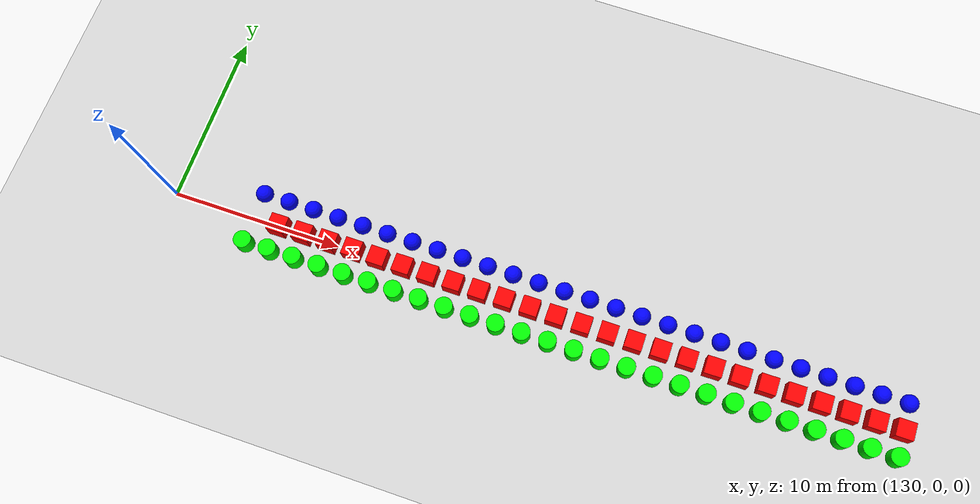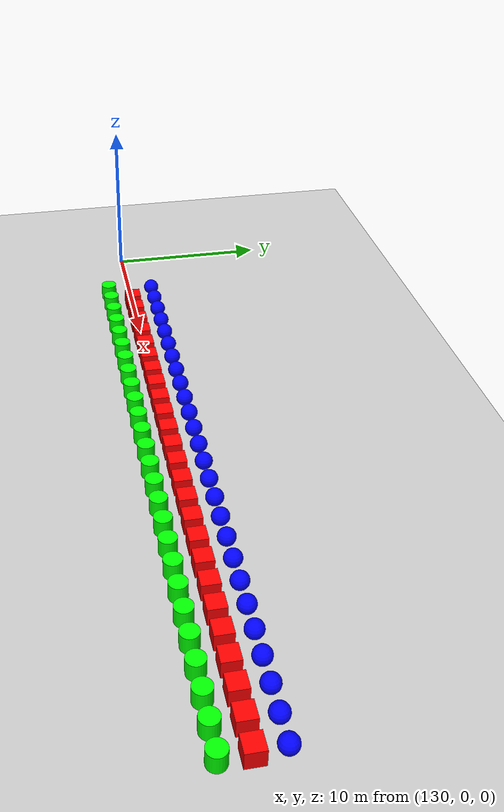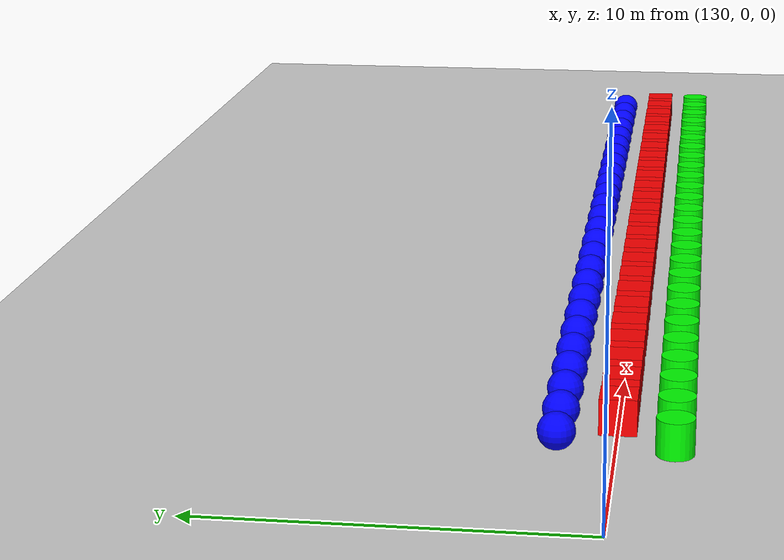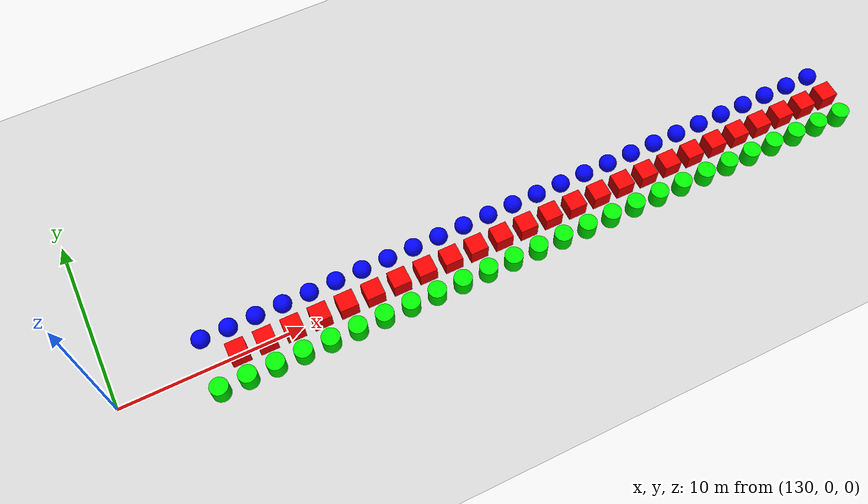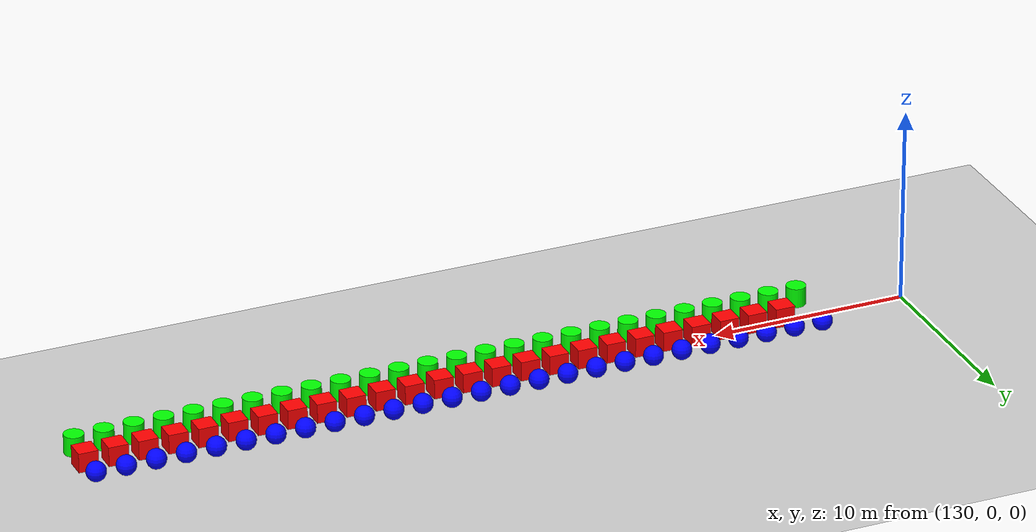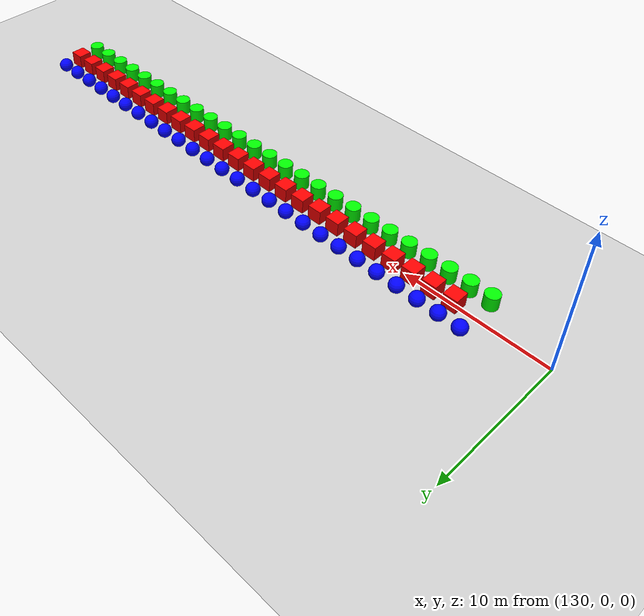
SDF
<sdf version="1.6">
 <world name="shapes">
  <model name="ground_plane">
   <static>true</static>
   <link name="link">
    <collision name="collision">
     <geometry><plane><normal>0 0 1</normal><size>100 100</size></plane></geometry>
    </collision>
    <visual name="visual">
     <geometry><plane><normal>0 0 1</normal><size>100 100</size></plane></geometry>
     <material>
      <ambient>0.8 0.8 0.8 1</ambient>
      <diffuse>0.8 0.8 0.8 1</diffuse>
      <specular>0.8 0.8 0.8 1</specular>
     </material>
    </visual>
   </link>
  </model>
  <model name="cylinder_590">
   <static>false</static>
   <pose>135.0 -1.5 0.5 0 0 0</pose>
   <link name="cylinder_link">
    <inertial>
     <inertia><ixx>2</ixx><ixy>0</ixy><ixz>0</ixz><iyy>2</iyy><iyz>0</iyz><izz>2</izz></inertia>
     <mass>2.0</mass>
    </inertial>
    <collision name="cylinder_collision">
     <geometry><cylinder><radius>0.5</radius><length>1.0</length></cylinder></geometry>
    </collision>
    <visual name="cylinder_visual">
     <geometry><cylinder><radius>0.5</radius><length>1.0</length></cylinder></geometry>
     <material><ambient>0 1 0 1</ambient><diffuse>0 1 0 1</diffuse><specular>0 1 0 1</specular></material>
    </visual>
   </link>
  </model>
  <model name="sphere_590">
   <static>false</static>
   <pose>135.0 1.5 0.5 0 0 0</pose>
   <link name="sphere_link">
    <inertial>
     <inertia><ixx>3</ixx><ixy>0</ixy><ixz>0</ixz><iyy>3</iyy><iyz>0</iyz><izz>3</izz></inertia>
     <mass>3.0</mass>
    </inertial>
    <collision name="sphere_collision"><geometry><sphere><radius>0.5</radius></sphere></geometry></collision>
    <visual name="sphere_visual">
     <geometry><sphere><radius>0.5</radius></sphere></geometry>
     <material><ambient>0 0 1 1</ambient><diffuse>0 0 1 1</diffuse><specular>0 0 1 1</specular></material>
    </visual>
   </link>
  </model>
  <model name="box_591">
   <static>false</static>
   <pose>136.5 0 0.5 0 0 0</pose>
   <link name="box_link">
    <inertial>
     <inertia><ixx>1</ixx><ixy>0</ixy><ixz>0</ixz><iyy>1</iyy><iyz>0</iyz><izz>1</izz></inertia>
     <mass>1.0</mass>
    </inertial>
    <collision name="box_collision"><geometry><box><size>1 1 1</size></box></geometry></collision>
    <visual name="box_visual">
     <geometry><box><size>1 1 1</size></box></geometry>
     <material><ambient>1 0 0 1</ambient><diffuse>1 0 0 1</diffuse><specular>1 0 0 1</specular></material>
    </visual>
   </link>
  </model>
  <model name="cylinder_591">
   <static>false</static>
   <pose>136.5 -1.5 0.5 0 0 0</pose>
   <link name="cylinder_link">
    <inertial>
     <inertia><ixx>2</ixx><ixy>0</ixy><ixz>0</ixz><iyy>2</iyy><iyz>0</iyz><izz>2</izz></inertia>
     <mass>2.0</mass>
    </inertial>
    <collision name="cylinder_collision">
     <geometry><cylinder><radius>0.5</radius><length>1.0</length></cylinder></geometry>
    </collision>
    <visual name="cylinder_visual">
     <geometry><cylinder><radius>0.5</radius><length>1.0</length></cylinder></geometry>
     <material><ambient>0 1 0 1</ambient><diffuse>0 1 0 1</diffuse><specular>0 1 0 1</specular></material>
    </visual>
   </link>
  </model>
  <model name="sphere_591">
   <static>false</static>
   <pose>136.5 1.5 0.5 0 0 0</pose>
   <link name="sphere_link">
    <inertial>
     <inertia><ixx>3</ixx><ixy>0</ixy><ixz>0</ixz><iyy>3</iyy><iyz>0</iyz><izz>3</izz></inertia>
     <mass>3.0</mass>
    </inertial>
    <collision name="sphere_collision"><geometry><sphere><radius>0.5</radius></sphere></geometry></collision>
    <visual name="sphere_visual">
     <geometry><sphere><radius>0.5</radius></sphere></geometry>
     <material><ambient>0 0 1 1</ambient><diffuse>0 0 1 1</diffuse><specular>0 0 1 1</specular></material>
    </visual>
   </link>
  </model>
  <model name="box_592">
   <static>false</static>
   <pose>138.0 0 0.5 0 0 0</pose>
   <link name="box_link">
    <inertial>
     <inertia><ixx>1</ixx><ixy>0</ixy><ixz>0</ixz><iyy>1</iyy><iyz>0</iyz><izz>1</izz></inertia>
     <mass>1.0</mass>
    </inertial>
    <collision name="box_collision"><geometry><box><size>1 1 1</size></box></geometry></collision>
    <visual name="box_visual">
     <geometry><box><size>1 1 1</size></box></geometry>
     <material><ambient>1 0 0 1</ambient><diffuse>1 0 0 1</diffuse><specular>1 0 0 1</specular></material>
    </visual>
   </link>
  </model>
  <model name="cylinder_592">
   <static>false</static>
   <pose>138.0 -1.5 0.5 0 0 0</pose>
   <link name="cylinder_link">
    <inertial>
     <inertia><ixx>2</ixx><ixy>0</ixy><ixz>0</ixz><iyy>2</iyy><iyz>0</iyz><izz>2</izz></inertia>
     <mass>2.0</mass>
    </inertial>
    <collision name="cylinder_collision">
     <geometry><cylinder><radius>0.5</radius><length>1.0</length></cylinder></geometry>
    </collision>
    <visual name="cylinder_visual">
     <geometry><cylinder><radius>0.5</radius><length>1.0</length></cylinder></geometry>
     <material><ambient>0 1 0 1</ambient><diffuse>0 1 0 1</diffuse><specular>0 1 0 1</specular></material>
    </visual>
   </link>
  </model>
  <model name="sphere_592">
   <static>false</static>
   <pose>138.0 1.5 0.5 0 0 0</pose>
   <link name="sphere_link">
    <inertial>
     <inertia><ixx>3</ixx><ixy>0</ixy><ixz>0</ixz><iyy>3</iyy><iyz>0</iyz><izz>3</izz></inertia>
     <mass>3.0</mass>
    </inertial>
    <collision name="sphere_collision"><geometry><sphere><radius>0.5</radius></sphere></geometry></collision>
    <visual name="sphere_visual">
     <geometry><sphere><radius>0.5</radius></sphere></geometry>
     <material><ambient>0 0 1 1</ambient><diffuse>0 0 1 1</diffuse><specular>0 0 1 1</specular></material>
    </visual>
   </link>
  </model>
  <model name="box_593">
   <static>false</static>
   <pose>139.5 0 0.5 0 0 0</pose>
   <link name="box_link">
    <inertial>
     <inertia><ixx>1</ixx><ixy>0</ixy><ixz>0</ixz><iyy>1</iyy><iyz>0</iyz><izz>1</izz></inertia>
     <mass>1.0</mass>
    </inertial>
    <collision name="box_collision"><geometry><box><size>1 1 1</size></box></geometry></collision>
    <visual name="box_visual">
     <geometry><box><size>1 1 1</size></box></geometry>
     <material><ambient>1 0 0 1</ambient><diffuse>1 0 0 1</diffuse><specular>1 0 0 1</specular></material>
    </visual>
   </link>
  </model>
  <model name="cylinder_593">
   <static>false</static>
   <pose>139.5 -1.5 0.5 0 0 0</pose>
   <link name="cylinder_link">
    <inertial>
     <inertia><ixx>2</ixx><ixy>0</ixy><ixz>0</ixz><iyy>2</iyy><iyz>0</iyz><izz>2</izz></inertia>
     <mass>2.0</mass>
    </inertial>
    <collision name="cylinder_collision">
     <geometry><cylinder><radius>0.5</radius><length>1.0</length></cylinder></geometry>
    </collision>
    <visual name="cylinder_visual">
     <geometry><cylinder><radius>0.5</radius><length>1.0</length></cylinder></geometry>
     <material><ambient>0 1 0 1</ambient><diffuse>0 1 0 1</diffuse><specular>0 1 0 1</specular></material>
    </visual>
   </link>
  </model>
  <model name="sphere_593">
   <static>false</static>
   <pose>139.5 1.5 0.5 0 0 0</pose>
   <link name="sphere_link">
    <inertial>
     <inertia><ixx>3</ixx><ixy>0</ixy><ixz>0</ixz><iyy>3</iyy><iyz>0</iyz><izz>3</izz></inertia>
     <mass>3.0</mass>
    </inertial>
    <collision name="sphere_collision"><geometry><sphere><radius>0.5</radius></sphere></geometry></collision>
    <visual name="sphere_visual">
     <geometry><sphere><radius>0.5</radius></sphere></geometry>
     <material><ambient>0 0 1 1</ambient><diffuse>0 0 1 1</diffuse><specular>0 0 1 1</specular></material>
    </visual>
   </link>
  </model>
  <model name="box_594">
   <static>false</static>
   <pose>141.0 0 0.5 0 0 0</pose>
   <link name="box_link">
    <inertial>
     <inertia><ixx>1</ixx><ixy>0</ixy><ixz>0</ixz><iyy>1</iyy><iyz>0</iyz><izz>1</izz></inertia>
     <mass>1.0</mass>
    </inertial>
    <collision name="box_collision"><geometry><box><size>1 1 1</size></box></geometry></collision>
    <visual name="box_visual">
     <geometry><box><size>1 1 1</size></box></geometry>
     <material><ambient>1 0 0 1</ambient><diffuse>1 0 0 1</diffuse><specular>1 0 0 1</specular></material>
    </visual>
   </link>
  </model>
  <model name="cylinder_594">
   <static>false</static>
   <pose>141.0 -1.5 0.5 0 0 0</pose>
   <link name="cylinder_link">
    <inertial>
     <inertia><ixx>2</ixx><ixy>0</ixy><ixz>0</ixz><iyy>2</iyy><iyz>0</iyz><izz>2</izz></inertia>
     <mass>2.0</mass>
    </inertial>
    <collision name="cylinder_collision">
     <geometry><cylinder><radius>0.5</radius><length>1.0</length></cylinder></geometry>
    </collision>
    <visual name="cylinder_visual">
     <geometry><cylinder><radius>0.5</radius><length>1.0</length></cylinder></geometry>
     <material><ambient>0 1 0 1</ambient><diffuse>0 1 0 1</diffuse><specular>0 1 0 1</specular></material>
    </visual>
   </link>
  </model>
  <model name="sphere_594">
   <static>false</static>
   <pose>141.0 1.5 0.5 0 0 0</pose>
   <link name="sphere_link">
    <inertial>
     <inertia><ixx>3</ixx><ixy>0</ixy><ixz>0</ixz><iyy>3</iyy><iyz>0</iyz><izz>3</izz></inertia>
     <mass>3.0</mass>
    </inertial>
    <collision name="sphere_collision"><geometry><sphere><radius>0.5</radius></sphere></geometry></collision>
    <visual name="sphere_visual">
     <geometry><sphere><radius>0.5</radius></sphere></geometry>
     <material><ambient>0 0 1 1</ambient><diffuse>0 0 1 1</diffuse><specular>0 0 1 1</specular></material>
    </visual>
   </link>
  </model>
  <model name="box_595">
   <static>false</static>
   <pose>142.5 0 0.5 0 0 0</pose>
   <link name="box_link">
    <inertial>
     <inertia><ixx>1</ixx><ixy>0</ixy><ixz>0</ixz><iyy>1</iyy><iyz>0</iyz><izz>1</izz></inertia>
     <mass>1.0</mass>
    </inertial>
    <collision name="box_collision"><geometry><box><size>1 1 1</size></box></geometry></collision>
    <visual name="box_visual">
     <geometry><box><size>1 1 1</size></box></geometry>
     <material><ambient>1 0 0 1</ambient><diffuse>1 0 0 1</diffuse><specular>1 0 0 1</specular></material>
    </visual>
   </link>
  </model>
  <model name="cylinder_595">
   <static>false</static>
   <pose>142.5 -1.5 0.5 0 0 0</pose>
   <link name="cylinder_link">
    <inertial>
     <inertia><ixx>2</ixx><ixy>0</ixy><ixz>0</ixz><iyy>2</iyy><iyz>0</iyz><izz>2</izz></inertia>
     <mass>2.0</mass>
    </inertial>
    <collision name="cylinder_collision">
     <geometry><cylinder><radius>0.5</radius><length>1.0</length></cylinder></geometry>
    </collision>
    <visual name="cylinder_visual">
     <geometry><cylinder><radius>0.5</radius><length>1.0</length></cylinder></geometry>
     <material><ambient>0 1 0 1</ambient><diffuse>0 1 0 1</diffuse><specular>0 1 0 1</specular></material>
    </visual>
   </link>
  </model>
  <model name="sphere_595">
   <static>false</static>
   <pose>142.5 1.5 0.5 0 0 0</pose>
   <link name="sphere_link">
    <inertial>
     <inertia><ixx>3</ixx><ixy>0</ixy><ixz>0</ixz><iyy>3</iyy><iyz>0</iyz><izz>3</izz></inertia>
     <mass>3.0</mass>
    </inertial>
    <collision name="sphere_collision"><geometry><sphere><radius>0.5</radius></sphere></geometry></collision>
    <visual name="sphere_visual">
     <geometry><sphere><radius>0.5</radius></sphere></geometry>
     <material><ambient>0 0 1 1</ambient><diffuse>0 0 1 1</diffuse><specular>0 0 1 1</specular></material>
    </visual>
   </link>
  </model>
  <model name="box_596">
   <static>false</static>
   <pose>144.0 0 0.5 0 0 0</pose>
   <link name="box_link">
    <inertial>
     <inertia><ixx>1</ixx><ixy>0</ixy><ixz>0</ixz><iyy>1</iyy><iyz>0</iyz><izz>1</izz></inertia>
     <mass>1.0</mass>
    </inertial>
    <collision name="box_collision"><geometry><box><size>1 1 1</size></box></geometry></collision>
    <visual name="box_visual">
     <geometry><box><size>1 1 1</size></box></geometry>
     <material><ambient>1 0 0 1</ambient><diffuse>1 0 0 1</diffuse><specular>1 0 0 1</specular></material>
    </visual>
   </link>
  </model>
  <model name="cylinder_596">
   <static>false</static>
   <pose>144.0 -1.5 0.5 0 0 0</pose>
   <link name="cylinder_link">
    <inertial>
     <inertia><ixx>2</ixx><ixy>0</ixy><ixz>0</ixz><iyy>2</iyy><iyz>0</iyz><izz>2</izz></inertia>
     <mass>2.0</mass>
    </inertial>
    <collision name="cylinder_collision">
     <geometry><cylinder><radius>0.5</radius><length>1.0</length></cylinder></geometry>
    </collision>
    <visual name="cylinder_visual">
     <geometry><cylinder><radius>0.5</radius><length>1.0</length></cylinder></geometry>
     <material><ambient>0 1 0 1</ambient><diffuse>0 1 0 1</diffuse><specular>0 1 0 1</specular></material>
    </visual>
   </link>
  </model>
  <model name="sphere_596">
   <static>false</static>
   <pose>144.0 1.5 0.5 0 0 0</pose>
   <link name="sphere_link">
    <inertial>
     <inertia><ixx>3</ixx><ixy>0</ixy><ixz>0</ixz><iyy>3</iyy><iyz>0</iyz><izz>3</izz></inertia>
     <mass>3.0</mass>
    </inertial>
    <collision name="sphere_collision"><geometry><sphere><radius>0.5</radius></sphere></geometry></collision>
    <visual name="sphere_visual">
     <geometry><sphere><radius>0.5</radius></sphere></geometry>
     <material><ambient>0 0 1 1</ambient><diffuse>0 0 1 1</diffuse><specular>0 0 1 1</specular></material>
    </visual>
   </link>
  </model>
  <model name="box_597">
   <static>false</static>
   <pose>145.5 0 0.5 0 0 0</pose>
   <link name="box_link">
    <inertial>
     <inertia><ixx>1</ixx><ixy>0</ixy><ixz>0</ixz><iyy>1</iyy><iyz>0</iyz><izz>1</izz></inertia>
     <mass>1.0</mass>
    </inertial>
    <collision name="box_collision"><geometry><box><size>1 1 1</size></box></geometry></collision>
    <visual name="box_visual">
     <geometry><box><size>1 1 1</size></box></geometry>
     <material><ambient>1 0 0 1</ambient><diffuse>1 0 0 1</diffuse><specular>1 0 0 1</specular></material>
    </visual>
   </link>
  </model>
  <model name="cylinder_597">
   <static>false</static>
   <pose>145.5 -1.5 0.5 0 0 0</pose>
   <link name="cylinder_link">
    <inertial>
     <inertia><ixx>2</ixx><ixy>0</ixy><ixz>0</ixz><iyy>2</iyy><iyz>0</iyz><izz>2</izz></inertia>
     <mass>2.0</mass>
    </inertial>
    <collision name="cylinder_collision">
     <geometry><cylinder><radius>0.5</radius><length>1.0</length></cylinder></geometry>
    </collision>
    <visual name="cylinder_visual">
     <geometry><cylinder><radius>0.5</radius><length>1.0</length></cylinder></geometry>
     <material><ambient>0 1 0 1</ambient><diffuse>0 1 0 1</diffuse><specular>0 1 0 1</specular></material>
    </visual>
   </link>
  </model>
  <model name="sphere_597">
   <static>false</static>
   <pose>145.5 1.5 0.5 0 0 0</pose>
   <link name="sphere_link">
    <inertial>
     <inertia><ixx>3</ixx><ixy>0</ixy><ixz>0</ixz><iyy>3</iyy><iyz>0</iyz><izz>3</izz></inertia>
     <mass>3.0</mass>
    </inertial>
    <collision name="sphere_collision"><geometry><sphere><radius>0.5</radius></sphere></geometry></collision>
    <visual name="sphere_visual">
     <geometry><sphere><radius>0.5</radius></sphere></geometry>
     <material><ambient>0 0 1 1</ambient><diffuse>0 0 1 1</diffuse><specular>0 0 1 1</specular></material>
    </visual>
   </link>
  </model>
  <model name="box_598">
   <static>false</static>
   <pose>147.0 0 0.5 0 0 0</pose>
   <link name="box_link">
    <inertial>
     <inertia><ixx>1</ixx><ixy>0</ixy><ixz>0</ixz><iyy>1</iyy><iyz>0</iyz><izz>1</izz></inertia>
     <mass>1.0</mass>
    </inertial>
    <collision name="box_collision"><geometry><box><size>1 1 1</size></box></geometry></collision>
    <visual name="box_visual">
     <geometry><box><size>1 1 1</size></box></geometry>
     <material><ambient>1 0 0 1</ambient><diffuse>1 0 0 1</diffuse><specular>1 0 0 1</specular></material>
    </visual>
   </link>
  </model>
  <model name="cylinder_598">
   <static>false</static>
   <pose>147.0 -1.5 0.5 0 0 0</pose>
   <link name="cylinder_link">
    <inertial>
     <inertia><ixx>2</ixx><ixy>0</ixy><ixz>0</ixz><iyy>2</iyy><iyz>0</iyz><izz>2</izz></inertia>
     <mass>2.0</mass>
    </inertial>
    <collision name="cylinder_collision">
     <geometry><cylinder><radius>0.5</radius><length>1.0</length></cylinder></geometry>
    </collision>
    <visual name="cylinder_visual">
     <geometry><cylinder><radius>0.5</radius><length>1.0</length></cylinder></geometry>
     <material><ambient>0 1 0 1</ambient><diffuse>0 1 0 1</diffuse><specular>0 1 0 1</specular></material>
    </visual>
   </link>
  </model>
  <model name="sphere_598">
   <static>false</static>
   <pose>147.0 1.5 0.5 0 0 0</pose>
   <link name="sphere_link">
    <inertial>
     <inertia><ixx>3</ixx><ixy>0</ixy><ixz>0</ixz><iyy>3</iyy><iyz>0</iyz><izz>3</izz></inertia>
     <mass>3.0</mass>
    </inertial>
    <collision name="sphere_collision"><geometry><sphere><radius>0.5</radius></sphere></geometry></collision>
    <visual name="sphere_visual">
     <geometry><sphere><radius>0.5</radius></sphere></geometry>
     <material><ambient>0 0 1 1</ambient><diffuse>0 0 1 1</diffuse><specular>0 0 1 1</specular></material>
    </visual>
   </link>
  </model>
  <model name="box_599">
   <static>false</static>
   <pose>148.5 0 0.5 0 0 0</pose>
   <link name="box_link">
    <inertial>
     <inertia><ixx>1</ixx><ixy>0</ixy><ixz>0</ixz><iyy>1</iyy><iyz>0</iyz><izz>1</izz></inertia>
     <mass>1.0</mass>
    </inertial>
    <collision name="box_collision"><geometry><box><size>1 1 1</size></box></geometry></collision>
    <visual name="box_visual">
     <geometry><box><size>1 1 1</size></box></geometry>
     <material><ambient>1 0 0 1</ambient><diffuse>1 0 0 1</diffuse><specular>1 0 0 1</specular></material>
    </visual>
   </link>
  </model>
  <model name="cylinder_599">
   <static>false</static>
   <pose>148.5 -1.5 0.5 0 0 0</pose>
   <link name="cylinder_link">
    <inertial>
     <inertia><ixx>2</ixx><ixy>0</ixy><ixz>0</ixz><iyy>2</iyy><iyz>0</iyz><izz>2</izz></inertia>
     <mass>2.0</mass>
    </inertial>
    <collision name="cylinder_collision">
     <geometry><cylinder><radius>0.5</radius><length>1.0</length></cylinder></geometry>
    </collision>
    <visual name="cylinder_visual">
     <geometry><cylinder><radius>0.5</radius><length>1.0</length></cylinder></geometry>
     <material><ambient>0 1 0 1</ambient><diffuse>0 1 0 1</diffuse><specular>0 1 0 1</specular></material>
    </visual>
   </link>
  </model>
  <model name="sphere_599">
   <static>false</static>
   <pose>148.5 1.5 0.5 0 0 0</pose>
   <link name="sphere_link">
    <inertial>
     <inertia><ixx>3</ixx><ixy>0</ixy><ixz>0</ixz><iyy>3</iyy><iyz>0</iyz><izz>3</izz></inertia>
     <mass>3.0</mass>
    </inertial>
    <collision name="sphere_collision"><geometry><sphere><radius>0.5</radius></sphere></geometry></collision>
    <visual name="sphere_visual">
     <geometry><sphere><radius>0.5</radius></sphere></geometry>
     <material><ambient>0 0 1 1</ambient><diffuse>0 0 1 1</diffuse><specular>0 0 1 1</specular></material>
    </visual>
   </link>
  </model>
  <model name="box_600">
   <static>false</static>
   <pose>150.0 0 0.5 0 0 0</pose>
   <link name="box_link">
    <inertial>
     <inertia><ixx>1</ixx><ixy>0</ixy><ixz>0</ixz><iyy>1</iyy><iyz>0</iyz><izz>1</izz></inertia>
     <mass>1.0</mass>
    </inertial>
    <collision name="box_collision"><geometry><box><size>1 1 1</size></box></geometry></collision>
    <visual name="box_visual">
     <geometry><box><size>1 1 1</size></box></geometry>
     <material><ambient>1 0 0 1</ambient><diffuse>1 0 0 1</diffuse><specular>1 0 0 1</specular></material>
    </visual>
   </link>
  </model>
  <model name="cylinder_600">
   <static>false</static>
   <pose>150.0 -1.5 0.5 0 0 0</pose>
   <link name="cylinder_link">
    <inertial>
     <inertia><ixx>2</ixx><ixy>0</ixy><ixz>0</ixz><iyy>2</iyy><iyz>0</iyz><izz>2</izz></inertia>
     <mass>2.0</mass>
    </inertial>
    <collision name="cylinder_collision">
     <geometry><cylinder><radius>0.5</radius><length>1.0</length></cylinder></geometry>
    </collision>
    <visual name="cylinder_visual">
     <geometry><cylinder><radius>0.5</radius><length>1.0</length></cylinder></geometry>
     <material><ambient>0 1 0 1</ambient><diffuse>0 1 0 1</diffuse><specular>0 1 0 1</specular></material>
    </visual>
   </link>
  </model>
  <model name="sphere_600">
   <static>false</static>
   <pose>150.0 1.5 0.5 0 0 0</pose>
   <link name="sphere_link">
    <inertial>
     <inertia><ixx>3</ixx><ixy>0</ixy><ixz>0</ixz><iyy>3</iyy><iyz>0</iyz><izz>3</izz></inertia>
     <mass>3.0</mass>
    </inertial>
    <collision name="sphere_collision"><geometry><sphere><radius>0.5</radius></sphere></geometry></collision>
    <visual name="sphere_visual">
     <geometry><sphere><radius>0.5</radius></sphere></geometry>
     <material><ambient>0 0 1 1</ambient><diffuse>0 0 1 1</diffuse><specular>0 0 1 1</specular></material>
    </visual>
   </link>
  </model>
  <model name="box_601">
   <static>false</static>
   <pose>151.5 0 0.5 0 0 0</pose>
   <link name="box_link">
    <inertial>
     <inertia><ixx>1</ixx><ixy>0</ixy><ixz>0</ixz><iyy>1</iyy><iyz>0</iyz><izz>1</izz></inertia>
     <mass>1.0</mass>
    </inertial>
    <collision name="box_collision"><geometry><box><size>1 1 1</size></box></geometry></collision>
    <visual name="box_visual">
     <geometry><box><size>1 1 1</size></box></geometry>
     <material><ambient>1 0 0 1</ambient><diffuse>1 0 0 1</diffuse><specular>1 0 0 1</specular></material>
    </visual>
   </link>
  </model>
  <model name="cylinder_601">
   <static>false</static>
   <pose>151.5 -1.5 0.5 0 0 0</pose>
   <link name="cylinder_link">
    <inertial>
     <inertia><ixx>2</ixx><ixy>0</ixy><ixz>0</ixz><iyy>2</iyy><iyz>0</iyz><izz>2</izz></inertia>
     <mass>2.0</mass>
    </inertial>
    <collision name="cylinder_collision">
     <geometry><cylinder><radius>0.5</radius><length>1.0</length></cylinder></geometry>
    </collision>
    <visual name="cylinder_visual">
     <geometry><cylinder><radius>0.5</radius><length>1.0</length></cylinder></geometry>
     <material><ambient>0 1 0 1</ambient><diffuse>0 1 0 1</diffuse><specular>0 1 0 1</specular></material>
    </visual>
   </link>
  </model>
  <model name="sphere_601">
   <static>false</static>
   <pose>151.5 1.5 0.5 0 0 0</pose>
   <link name="sphere_link">
    <inertial>
     <inertia><ixx>3</ixx><ixy>0</ixy><ixz>0</ixz><iyy>3</iyy><iyz>0</iyz><izz>3</izz></inertia>
     <mass>3.0</mass>
    </inertial>
    <collision name="sphere_collision"><geometry><sphere><radius>0.5</radius></sphere></geometry></collision>
    <visual name="sphere_visual">
     <geometry><sphere><radius>0.5</radius></sphere></geometry>
     <material><ambient>0 0 1 1</ambient><diffuse>0 0 1 1</diffuse><specular>0 0 1 1</specular></material>
    </visual>
   </link>
  </model>
  <model name="box_602">
   <static>false</static>
   <pose>153.0 0 0.5 0 0 0</pose>
   <link name="box_link">
    <inertial>
     <inertia><ixx>1</ixx><ixy>0</ixy><ixz>0</ixz><iyy>1</iyy><iyz>0</iyz><izz>1</izz></inertia>
     <mass>1.0</mass>
    </inertial>
    <collision name="box_collision"><geometry><box><size>1 1 1</size></box></geometry></collision>
    <visual name="box_visual">
     <geometry><box><size>1 1 1</size></box></geometry>
     <material><ambient>1 0 0 1</ambient><diffuse>1 0 0 1</diffuse><specular>1 0 0 1</specular></material>
    </visual>
   </link>
  </model>
  <model name="cylinder_602">
   <static>false</static>
   <pose>153.0 -1.5 0.5 0 0 0</pose>
   <link name="cylinder_link">
    <inertial>
     <inertia><ixx>2</ixx><ixy>0</ixy><ixz>0</ixz><iyy>2</iyy><iyz>0</iyz><izz>2</izz></inertia>
     <mass>2.0</mass>
    </inertial>
    <collision name="cylinder_collision">
     <geometry><cylinder><radius>0.5</radius><length>1.0</length></cylinder></geometry>
    </collision>
    <visual name="cylinder_visual">
     <geometry><cylinder><radius>0.5</radius><length>1.0</length></cylinder></geometry>
     <material><ambient>0 1 0 1</ambient><diffuse>0 1 0 1</diffuse><specular>0 1 0 1</specular></material>
    </visual>
   </link>
  </model>
  <model name="sphere_602">
   <static>false</static>
   <pose>153.0 1.5 0.5 0 0 0</pose>
   <link name="sphere_link">
    <inertial>
     <inertia><ixx>3</ixx><ixy>0</ixy><ixz>0</ixz><iyy>3</iyy><iyz>0</iyz><izz>3</izz></inertia>
     <mass>3.0</mass>
    </inertial>
    <collision name="sphere_collision"><geometry><sphere><radius>0.5</radius></sphere></geometry></collision>
    <visual name="sphere_visual">
     <geometry><sphere><radius>0.5</radius></sphere></geometry>
     <material><ambient>0 0 1 1</ambient><diffuse>0 0 1 1</diffuse><specular>0 0 1 1</specular></material>
    </visual>
   </link>
  </model>
  <model name="box_603">
   <static>false</static>
   <pose>154.5 0 0.5 0 0 0</pose>
   <link name="box_link">
    <inertial>
     <inertia><ixx>1</ixx><ixy>0</ixy><ixz>0</ixz><iyy>1</iyy><iyz>0</iyz><izz>1</izz></inertia>
     <mass>1.0</mass>
    </inertial>
    <collision name="box_collision"><geometry><box><size>1 1 1</size></box></geometry></collision>
    <visual name="box_visual">
     <geometry><box><size>1 1 1</size></box></geometry>
     <material><ambient>1 0 0 1</ambient><diffuse>1 0 0 1</diffuse><specular>1 0 0 1</specular></material>
    </visual>
   </link>
  </model>
  <model name="cylinder_603">
   <static>false</static>
   <pose>154.5 -1.5 0.5 0 0 0</pose>
   <link name="cylinder_link">
    <inertial>
     <inertia><ixx>2</ixx><ixy>0</ixy><ixz>0</ixz><iyy>2</iyy><iyz>0</iyz><izz>2</izz></inertia>
     <mass>2.0</mass>
    </inertial>
    <collision name="cylinder_collision">
     <geometry><cylinder><radius>0.5</radius><length>1.0</length></cylinder></geometry>
    </collision>
    <visual name="cylinder_visual">
     <geometry><cylinder><radius>0.5</radius><length>1.0</length></cylinder></geometry>
     <material><ambient>0 1 0 1</ambient><diffuse>0 1 0 1</diffuse><specular>0 1 0 1</specular></material>
    </visual>
   </link>
  </model>
  <model name="sphere_603">
   <static>false</static>
   <pose>154.5 1.5 0.5 0 0 0</pose>
   <link name="sphere_link">
    <inertial>
     <inertia><ixx>3</ixx><ixy>0</ixy><ixz>0</ixz><iyy>3</iyy><iyz>0</iyz><izz>3</izz></inertia>
     <mass>3.0</mass>
    </inertial>
    <collision name="sphere_collision"><geometry><sphere><radius>0.5</radius></sphere></geometry></collision>
    <visual name="sphere_visual">
     <geometry><sphere><radius>0.5</radius></sphere></geometry>
     <material><ambient>0 0 1 1</ambient><diffuse>0 0 1 1</diffuse><specular>0 0 1 1</specular></material>
    </visual>
   </link>
  </model>
  <model name="box_604">
   <static>false</static>
   <pose>156.0 0 0.5 0 0 0</pose>
   <link name="box_link">
    <inertial>
     <inertia><ixx>1</ixx><ixy>0</ixy><ixz>0</ixz><iyy>1</iyy><iyz>0</iyz><izz>1</izz></inertia>
     <mass>1.0</mass>
    </inertial>
    <collision name="box_collision"><geometry><box><size>1 1 1</size></box></geometry></collision>
    <visual name="box_visual">
     <geometry><box><size>1 1 1</size></box></geometry>
     <material><ambient>1 0 0 1</ambient><diffuse>1 0 0 1</diffuse><specular>1 0 0 1</specular></material>
    </visual>
   </link>
  </model>
  <model name="cylinder_604">
   <static>false</static>
   <pose>156.0 -1.5 0.5 0 0 0</pose>
   <link name="cylinder_link">
    <inertial>
     <inertia><ixx>2</ixx><ixy>0</ixy><ixz>0</ixz><iyy>2</iyy><iyz>0</iyz><izz>2</izz></inertia>
     <mass>2.0</mass>
    </inertial>
    <collision name="cylinder_collision">
     <geometry><cylinder><radius>0.5</radius><length>1.0</length></cylinder></geometry>
    </collision>
    <visual name="cylinder_visual">
     <geometry><cylinder><radius>0.5</radius><length>1.0</length></cylinder></geometry>
     <material><ambient>0 1 0 1</ambient><diffuse>0 1 0 1</diffuse><specular>0 1 0 1</specular></material>
    </visual>
   </link>
  </model>
  <model name="sphere_604">
   <static>false</static>
   <pose>156.0 1.5 0.5 0 0 0</pose>
   <link name="sphere_link">
    <inertial>
     <inertia><ixx>3</ixx><ixy>0</ixy><ixz>0</ixz><iyy>3</iyy><iyz>0</iyz><izz>3</izz></inertia>
     <mass>3.0</mass>
    </inertial>
    <collision name="sphere_collision"><geometry><sphere><radius>0.5</radius></sphere></geometry></collision>
    <visual name="sphere_visual">
     <geometry><sphere><radius>0.5</radius></sphere></geometry>
     <material><ambient>0 0 1 1</ambient><diffuse>0 0 1 1</diffuse><specular>0 0 1 1</specular></material>
    </visual>
   </link>
  </model>
  <model name="box_605">
   <static>false</static>
   <pose>157.5 0 0.5 0 0 0</pose>
   <link name="box_link">
    <inertial>
     <inertia><ixx>1</ixx><ixy>0</ixy><ixz>0</ixz><iyy>1</iyy><iyz>0</iyz><izz>1</izz></inertia>
     <mass>1.0</mass>
    </inertial>
    <collision name="box_collision"><geometry><box><size>1 1 1</size></box></geometry></collision>
    <visual name="box_visual">
     <geometry><box><size>1 1 1</size></box></geometry>
     <material><ambient>1 0 0 1</ambient><diffuse>1 0 0 1</diffuse><specular>1 0 0 1</specular></material>
    </visual>
   </link>
  </model>
  <model name="cylinder_605">
   <static>false</static>
   <pose>157.5 -1.5 0.5 0 0 0</pose>
   <link name="cylinder_link">
    <inertial>
     <inertia><ixx>2</ixx><ixy>0</ixy><ixz>0</ixz><iyy>2</iyy><iyz>0</iyz><izz>2</izz></inertia>
     <mass>2.0</mass>
    </inertial>
    <collision name="cylinder_collision">
     <geometry><cylinder><radius>0.5</radius><length>1.0</length></cylinder></geometry>
    </collision>
    <visual name="cylinder_visual">
     <geometry><cylinder><radius>0.5</radius><length>1.0</length></cylinder></geometry>
     <material><ambient>0 1 0 1</ambient><diffuse>0 1 0 1</diffuse><specular>0 1 0 1</specular></material>
    </visual>
   </link>
  </model>
  <model name="sphere_605">
   <static>false</static>
   <pose>157.5 1.5 0.5 0 0 0</pose>
   <link name="sphere_link">
    <inertial>
     <inertia><ixx>3</ixx><ixy>0</ixy><ixz>0</ixz><iyy>3</iyy><iyz>0</iyz><izz>3</izz></inertia>
     <mass>3.0</mass>
    </inertial>
    <collision name="sphere_collision"><geometry><sphere><radius>0.5</radius></sphere></geometry></collision>
    <visual name="sphere_visual">
     <geometry><sphere><radius>0.5</radius></sphere></geometry>
     <material><ambient>0 0 1 1</ambient><diffuse>0 0 1 1</diffuse><specular>0 0 1 1</specular></material>
    </visual>
   </link>
  </model>
  <model name="box_606">
   <static>false</static>
   <pose>159.0 0 0.5 0 0 0</pose>
   <link name="box_link">
    <inertial>
     <inertia><ixx>1</ixx><ixy>0</ixy><ixz>0</ixz><iyy>1</iyy><iyz>0</iyz><izz>1</izz></inertia>
     <mass>1.0</mass>
    </inertial>
    <collision name="box_collision"><geometry><box><size>1 1 1</size></box></geometry></collision>
    <visual name="box_visual">
     <geometry><box><size>1 1 1</size></box></geometry>
     <material><ambient>1 0 0 1</ambient><diffuse>1 0 0 1</diffuse><specular>1 0 0 1</specular></material>
    </visual>
   </link>
  </model>
  <model name="cylinder_606">
   <static>false</static>
   <pose>159.0 -1.5 0.5 0 0 0</pose>
   <link name="cylinder_link">
    <inertial>
     <inertia><ixx>2</ixx><ixy>0</ixy><ixz>0</ixz><iyy>2</iyy><iyz>0</iyz><izz>2</izz></inertia>
     <mass>2.0</mass>
    </inertial>
    <collision name="cylinder_collision">
     <geometry><cylinder><radius>0.5</radius><length>1.0</length></cylinder></geometry>
    </collision>
    <visual name="cylinder_visual">
     <geometry><cylinder><radius>0.5</radius><length>1.0</length></cylinder></geometry>
     <material><ambient>0 1 0 1</ambient><diffuse>0 1 0 1</diffuse><specular>0 1 0 1</specular></material>
    </visual>
   </link>
  </model>
  <model name="sphere_606">
   <static>false</static>
   <pose>159.0 1.5 0.5 0 0 0</pose>
   <link name="sphere_link">
    <inertial>
     <inertia><ixx>3</ixx><ixy>0</ixy><ixz>0</ixz><iyy>3</iyy><iyz>0</iyz><izz>3</izz></inertia>
     <mass>3.0</mass>
    </inertial>
    <collision name="sphere_collision"><geometry><sphere><radius>0.5</radius></sphere></geometry></collision>
    <visual name="sphere_visual">
     <geometry><sphere><radius>0.5</radius></sphere></geometry>
     <material><ambient>0 0 1 1</ambient><diffuse>0 0 1 1</diffuse><specular>0 0 1 1</specular></material>
    </visual>
   </link>
  </model>
  <model name="box_607">
   <static>false</static>
   <pose>160.5 0 0.5 0 0 0</pose>
   <link name="box_link">
    <inertial>
     <inertia><ixx>1</ixx><ixy>0</ixy><ixz>0</ixz><iyy>1</iyy><iyz>0</iyz><izz>1</izz></inertia>
     <mass>1.0</mass>
    </inertial>
    <collision name="box_collision"><geometry><box><size>1 1 1</size></box></geometry></collision>
    <visual name="box_visual">
     <geometry><box><size>1 1 1</size></box></geometry>
     <material><ambient>1 0 0 1</ambient><diffuse>1 0 0 1</diffuse><specular>1 0 0 1</specular></material>
    </visual>
   </link>
  </model>
  <model name="cylinder_607">
   <static>false</static>
   <pose>160.5 -1.5 0.5 0 0 0</pose>
   <link name="cylinder_link">
    <inertial>
     <inertia><ixx>2</ixx><ixy>0</ixy><ixz>0</ixz><iyy>2</iyy><iyz>0</iyz><izz>2</izz></inertia>
     <mass>2.0</mass>
    </inertial>
    <collision name="cylinder_collision">
     <geometry><cylinder><radius>0.5</radius><length>1.0</length></cylinder></geometry>
    </collision>
    <visual name="cylinder_visual">
     <geometry><cylinder><radius>0.5</radius><length>1.0</length></cylinder></geometry>
     <material><ambient>0 1 0 1</ambient><diffuse>0 1 0 1</diffuse><specular>0 1 0 1</specular></material>
    </visual>
   </link>
  </model>
  <model name="sphere_607">
   <static>false</static>
   <pose>160.5 1.5 0.5 0 0 0</pose>
   <link name="sphere_link">
    <inertial>
     <inertia><ixx>3</ixx><ixy>0</ixy><ixz>0</ixz><iyy>3</iyy><iyz>0</iyz><izz>3</izz></inertia>
     <mass>3.0</mass>
    </inertial>
    <collision name="sphere_collision"><geometry><sphere><radius>0.5</radius></sphere></geometry></collision>
    <visual name="sphere_visual">
     <geometry><sphere><radius>0.5</radius></sphere></geometry>
     <material><ambient>0 0 1 1</ambient><diffuse>0 0 1 1</diffuse><specular>0 0 1 1</specular></material>
    </visual>
   </link>
  </model>
  <model name="box_608">
   <static>false</static>
   <pose>162.0 0 0.5 0 0 0</pose>
   <link name="box_link">
    <inertial>
     <inertia><ixx>1</ixx><ixy>0</ixy><ixz>0</ixz><iyy>1</iyy><iyz>0</iyz><izz>1</izz></inertia>
     <mass>1.0</mass>
    </inertial>
    <collision name="box_collision"><geometry><box><size>1 1 1</size></box></geometry></collision>
    <visual name="box_visual">
     <geometry><box><size>1 1 1</size></box></geometry>
     <material><ambient>1 0 0 1</ambient><diffuse>1 0 0 1</diffuse><specular>1 0 0 1</specular></material>
    </visual>
   </link>
  </model>
  <model name="cylinder_608">
   <static>false</static>
   <pose>162.0 -1.5 0.5 0 0 0</pose>
   <link name="cylinder_link">
    <inertial>
     <inertia><ixx>2</ixx><ixy>0</ixy><ixz>0</ixz><iyy>2</iyy><iyz>0</iyz><izz>2</izz></inertia>
     <mass>2.0</mass>
    </inertial>
    <collision name="cylinder_collision">
     <geometry><cylinder><radius>0.5</radius><length>1.0</length></cylinder></geometry>
    </collision>
    <visual name="cylinder_visual">
     <geometry><cylinder><radius>0.5</radius><length>1.0</length></cylinder></geometry>
     <material><ambient>0 1 0 1</ambient><diffuse>0 1 0 1</diffuse><specular>0 1 0 1</specular></material>
    </visual>
   </link>
  </model>
  <model name="sphere_608">
   <static>false</static>
   <pose>162.0 1.5 0.5 0 0 0</pose>
   <link name="sphere_link">
    <inertial>
     <inertia><ixx>3</ixx><ixy>0</ixy><ixz>0</ixz><iyy>3</iyy><iyz>0</iyz><izz>3</izz></inertia>
     <mass>3.0</mass>
    </inertial>
    <collision name="sphere_collision"><geometry><sphere><radius>0.5</radius></sphere></geometry></collision>
    <visual name="sphere_visual">
     <geometry><sphere><radius>0.5</radius></sphere></geometry>
     <material><ambient>0 0 1 1</ambient><diffuse>0 0 1 1</diffuse><specular>0 0 1 1</specular></material>
    </visual>
   </link>
  </model>
  <model name="box_609">
   <static>false</static>
   <pose>163.5 0 0.5 0 0 0</pose>
   <link name="box_link">
    <inertial>
     <inertia><ixx>1</ixx><ixy>0</ixy><ixz>0</ixz><iyy>1</iyy><iyz>0</iyz><izz>1</izz></inertia>
     <mass>1.0</mass>
    </inertial>
    <collision name="box_collision"><geometry><box><size>1 1 1</size></box></geometry></collision>
    <visual name="box_visual">
     <geometry><box><size>1 1 1</size></box></geometry>
     <material><ambient>1 0 0 1</ambient><diffuse>1 0 0 1</diffuse><specular>1 0 0 1</specular></material>
    </visual>
   </link>
  </model>
  <model name="cylinder_609">
   <static>false</static>
   <pose>163.5 -1.5 0.5 0 0 0</pose>
   <link name="cylinder_link">
    <inertial>
     <inertia><ixx>2</ixx><ixy>0</ixy><ixz>0</ixz><iyy>2</iyy><iyz>0</iyz><izz>2</izz></inertia>
     <mass>2.0</mass>
    </inertial>
    <collision name="cylinder_collision">
     <geometry><cylinder><radius>0.5</radius><length>1.0</length></cylinder></geometry>
    </collision>
    <visual name="cylinder_visual">
     <geometry><cylinder><radius>0.5</radius><length>1.0</length></cylinder></geometry>
     <material><ambient>0 1 0 1</ambient><diffuse>0 1 0 1</diffuse><specular>0 1 0 1</specular></material>
    </visual>
   </link>
  </model>
  <model name="sphere_609">
   <static>false</static>
   <pose>163.5 1.5 0.5 0 0 0</pose>
   <link name="sphere_link">
    <inertial>
     <inertia><ixx>3</ixx><ixy>0</ixy><ixz>0</ixz><iyy>3</iyy><iyz>0</iyz><izz>3</izz></inertia>
     <mass>3.0</mass>
    </inertial>
    <collision name="sphere_collision"><geometry><sphere><radius>0.5</radius></sphere></geometry></collision>
    <visual name="sphere_visual">
     <geometry><sphere><radius>0.5</radius></sphere></geometry>
     <material><ambient>0 0 1 1</ambient><diffuse>0 0 1 1</diffuse><specular>0 0 1 1</specular></material>
    </visual>
   </link>
  </model>
  <model name="box_610">
   <static>false</static>
   <pose>165.0 0 0.5 0 0 0</pose>
   <link name="box_link">
    <inertial>
     <inertia><ixx>1</ixx><ixy>0</ixy><ixz>0</ixz><iyy>1</iyy><iyz>0</iyz><izz>1</izz></inertia>
     <mass>1.0</mass>
    </inertial>
    <collision name="box_collision"><geometry><box><size>1 1 1</size></box></geometry></collision>
    <visual name="box_visual">
     <geometry><box><size>1 1 1</size></box></geometry>
     <material><ambient>1 0 0 1</ambient><diffuse>1 0 0 1</diffuse><specular>1 0 0 1</specular></material>
    </visual>
   </link>
  </model>
  <model name="cylinder_610">
   <static>false</static>
   <pose>165.0 -1.5 0.5 0 0 0</pose>
   <link name="cylinder_link">
    <inertial>
     <inertia><ixx>2</ixx><ixy>0</ixy><ixz>0</ixz><iyy>2</iyy><iyz>0</iyz><izz>2</izz></inertia>
     <mass>2.0</mass>
    </inertial>
    <collision name="cylinder_collision">
     <geometry><cylinder><radius>0.5</radius><length>1.0</length></cylinder></geometry>
    </collision>
    <visual name="cylinder_visual">
     <geometry><cylinder><radius>0.5</radius><length>1.0</length></cylinder></geometry>
     <material><ambient>0 1 0 1</ambient><diffuse>0 1 0 1</diffuse><specular>0 1 0 1</specular></material>
    </visual>
   </link>
  </model>
  <model name="sphere_610">
   <static>false</static>
   <pose>165.0 1.5 0.5 0 0 0</pose>
   <link name="sphere_link">
    <inertial>
     <inertia><ixx>3</ixx><ixy>0</ixy><ixz>0</ixz><iyy>3</iyy><iyz>0</iyz><izz>3</izz></inertia>
     <mass>3.0</mass>
    </inertial>
    <collision name="sphere_collision"><geometry><sphere><radius>0.5</radius></sphere></geometry></collision>
    <visual name="sphere_visual">
     <geometry><sphere><radius>0.5</radius></sphere></geometry>
     <material><ambient>0 0 1 1</ambient><diffuse>0 0 1 1</diffuse><specular>0 0 1 1</specular></material>
    </visual>
   </link>
  </model>
  <model name="box_611">
   <static>false</static>
   <pose>166.5 0 0.5 0 0 0</pose>
   <link name="box_link">
    <inertial>
     <inertia><ixx>1</ixx><ixy>0</ixy><ixz>0</ixz><iyy>1</iyy><iyz>0</iyz><izz>1</izz></inertia>
     <mass>1.0</mass>
    </inertial>
    <collision name="box_collision"><geometry><box><size>1 1 1</size></box></geometry></collision>
    <visual name="box_visual">
     <geometry><box><size>1 1 1</size></box></geometry>
     <material><ambient>1 0 0 1</ambient><diffuse>1 0 0 1</diffuse><specular>1 0 0 1</specular></material>
    </visual>
   </link>
  </model>
  <model name="cylinder_611">
   <static>false</static>
   <pose>166.5 -1.5 0.5 0 0 0</pose>
   <link name="cylinder_link">
    <inertial>
     <inertia><ixx>2</ixx><ixy>0</ixy><ixz>0</ixz><iyy>2</iyy><iyz>0</iyz><izz>2</izz></inertia>
     <mass>2.0</mass>
    </inertial>
    <collision name="cylinder_collision">
     <geometry><cylinder><radius>0.5</radius><length>1.0</length></cylinder></geometry>
    </collision>
    <visual name="cylinder_visual">
     <geometry><cylinder><radius>0.5</radius><length>1.0</length></cylinder></geometry>
     <material><ambient>0 1 0 1</ambient><diffuse>0 1 0 1</diffuse><specular>0 1 0 1</specular></material>
    </visual>
   </link>
  </model>
  <model name="sphere_611">
   <static>false</static>
   <pose>166.5 1.5 0.5 0 0 0</pose>
   <link name="sphere_link">
    <inertial>
     <inertia><ixx>3</ixx><ixy>0</ixy><ixz>0</ixz><iyy>3</iyy><iyz>0</iyz><izz>3</izz></inertia>
     <mass>3.0</mass>
    </inertial>
    <collision name="sphere_collision"><geometry><sphere><radius>0.5</radius></sphere></geometry></collision>
    <visual name="sphere_visual">
     <geometry><sphere><radius>0.5</radius></sphere></geometry>
     <material><ambient>0 0 1 1</ambient><diffuse>0 0 1 1</diffuse><specular>0 0 1 1</specular></material>
    </visual>
   </link>
  </model>
  <model name="box_612">
   <static>false</static>
   <pose>168.0 0 0.5 0 0 0</pose>
   <link name="box_link">
    <inertial>
     <inertia><ixx>1</ixx><ixy>0</ixy><ixz>0</ixz><iyy>1</iyy><iyz>0</iyz><izz>1</izz></inertia>
     <mass>1.0</mass>
    </inertial>
    <collision name="box_collision"><geometry><box><size>1 1 1</size></box></geometry></collision>
    <visual name="box_visual">
     <geometry><box><size>1 1 1</size></box></geometry>
     <material><ambient>1 0 0 1</ambient><diffuse>1 0 0 1</diffuse><specular>1 0 0 1</specular></material>
    </visual>
   </link>
  </model>
  <model name="cylinder_612">
   <static>false</static>
   <pose>168.0 -1.5 0.5 0 0 0</pose>
   <link name="cylinder_link">
    <inertial>
     <inertia><ixx>2</ixx><ixy>0</ixy><ixz>0</ixz><iyy>2</iyy><iyz>0</iyz><izz>2</izz></inertia>
     <mass>2.0</mass>
    </inertial>
    <collision name="cylinder_collision">
     <geometry><cylinder><radius>0.5</radius><length>1.0</length></cylinder></geometry>
    </collision>
    <visual name="cylinder_visual">
     <geometry><cylinder><radius>0.5</radius><length>1.0</length></cylinder></geometry>
     <material><ambient>0 1 0 1</ambient><diffuse>0 1 0 1</diffuse><specular>0 1 0 1</specular></material>
    </visual>
   </link>
  </model>
  <model name="sphere_612">
   <static>false</static>
   <pose>168.0 1.5 0.5 0 0 0</pose>
   <link name="sphere_link">
    <inertial>
     <inertia><ixx>3</ixx><ixy>0</ixy><ixz>0</ixz><iyy>3</iyy><iyz>0</iyz><izz>3</izz></inertia>
     <mass>3.0</mass>
    </inertial>
    <collision name="sphere_collision"><geometry><sphere><radius>0.5</radius></sphere></geometry></collision>
    <visual name="sphere_visual">
     <geometry><sphere><radius>0.5</radius></sphere></geometry>
     <material><ambient>0 0 1 1</ambient><diffuse>0 0 1 1</diffuse><specular>0 0 1 1</specular></material>
    </visual>
   </link>
  </model>
  <model name="box_613">
   <static>false</static>
   <pose>169.5 0 0.5 0 0 0</pose>
   <link name="box_link">
    <inertial>
     <inertia><ixx>1</ixx><ixy>0</ixy><ixz>0</ixz><iyy>1</iyy><iyz>0</iyz><izz>1</izz></inertia>
     <mass>1.0</mass>
    </inertial>
    <collision name="box_collision"><geometry><box><size>1 1 1</size></box></geometry></collision>
    <visual name="box_visual">
     <geometry><box><size>1 1 1</size></box></geometry>
     <material><ambient>1 0 0 1</ambient><diffuse>1 0 0 1</diffuse><specular>1 0 0 1</specular></material>
    </visual>
   </link>
  </model>
  <model name="cylinder_613">
   <static>false</static>
   <pose>169.5 -1.5 0.5 0 0 0</pose>
   <link name="cylinder_link">
    <inertial>
     <inertia><ixx>2</ixx><ixy>0</ixy><ixz>0</ixz><iyy>2</iyy><iyz>0</iyz><izz>2</izz></inertia>
     <mass>2.0</mass>
    </inertial>
    <collision name="cylinder_collision">
     <geometry><cylinder><radius>0.5</radius><length>1.0</length></cylinder></geometry>
    </collision>
    <visual name="cylinder_visual">
     <geometry><cylinder><radius>0.5</radius><length>1.0</length></cylinder></geometry>
     <material><ambient>0 1 0 1</ambient><diffuse>0 1 0 1</diffuse><specular>0 1 0 1</specular></material>
    </visual>
   </link>
  </model>
  <model name="sphere_613">
   <static>false</static>
   <pose>169.5 1.5 0.5 0 0 0</pose>
   <link name="sphere_link">
    <inertial>
     <inertia><ixx>3</ixx><ixy>0</ixy><ixz>0</ixz><iyy>3</iyy><iyz>0</iyz><izz>3</izz></inertia>
     <mass>3.0</mass>
    </inertial>
    <collision name="sphere_collision"><geometry><sphere><radius>0.5</radius></sphere></geometry></collision>
    <visual name="sphere_visual">
     <geometry><sphere><radius>0.5</radius></sphere></geometry>
     <material><ambient>0 0 1 1</ambient><diffuse>0 0 1 1</diffuse><specular>0 0 1 1</specular></material>
    </visual>
   </link>
  </model>
  <model name="box_614">
   <static>false</static>
   <pose>171.0 0 0.5 0 0 0</pose>
   <link name="box_link">
    <inertial>
     <inertia><ixx>1</ixx><ixy>0</ixy><ixz>0</ixz><iyy>1</iyy><iyz>0</iyz><izz>1</izz></inertia>
     <mass>1.0</mass>
    </inertial>
    <collision name="box_collision"><geometry><box><size>1 1 1</size></box></geometry></collision>
    <visual name="box_visual">
     <geometry><box><size>1 1 1</size></box></geometry>
     <material><ambient>1 0 0 1</ambient><diffuse>1 0 0 1</diffuse><specular>1 0 0 1</specular></material>
    </visual>
   </link>
  </model>
  <model name="cylinder_614">
   <static>false</static>
   <pose>171.0 -1.5 0.5 0 0 0</pose>
   <link name="cylinder_link">
    <inertial>
     <inertia><ixx>2</ixx><ixy>0</ixy><ixz>0</ixz><iyy>2</iyy><iyz>0</iyz><izz>2</izz></inertia>
     <mass>2.0</mass>
    </inertial>
    <collision name="cylinder_collision">
     <geometry><cylinder><radius>0.5</radius><length>1.0</length></cylinder></geometry>
    </collision>
    <visual name="cylinder_visual">
     <geometry><cylinder><radius>0.5</radius><length>1.0</length></cylinder></geometry>
     <material><ambient>0 1 0 1</ambient><diffuse>0 1 0 1</diffuse><specular>0 1 0 1</specular></material>
    </visual>
   </link>
  </model>
  <model name="sphere_614">
   <static>false</static>
   <pose>171.0 1.5 0.5 0 0 0</pose>
   <link name="sphere_link">
    <inertial>
     <inertia><ixx>3</ixx><ixy>0</ixy><ixz>0</ixz><iyy>3</iyy><iyz>0</iyz><izz>3</izz></inertia>
     <mass>3.0</mass>
    </inertial>
    <collision name="sphere_collision"><geometry><sphere><radius>0.5</radius></sphere></geometry></collision>
    <visual name="sphere_visual">
     <geometry><sphere><radius>0.5</radius></sphere></geometry>
     <material><ambient>0 0 1 1</ambient><diffuse>0 0 1 1</diffuse><specular>0 0 1 1</specular></material>
    </visual>
   </link>
  </model>
  <model name="box_615">
   <static>false</static>
   <pose>172.5 0 0.5 0 0 0</pose>
   <link name="box_link">
    <inertial>
     <inertia><ixx>1</ixx><ixy>0</ixy><ixz>0</ixz><iyy>1</iyy><iyz>0</iyz><izz>1</izz></inertia>
     <mass>1.0</mass>
    </inertial>
    <collision name="box_collision"><geometry><box><size>1 1 1</size></box></geometry></collision>
    <visual name="box_visual">
     <geometry><box><size>1 1 1</size></box></geometry>
     <material><ambient>1 0 0 1</ambient><diffuse>1 0 0 1</diffuse><specular>1 0 0 1</specular></material>
    </visual>
   </link>
  </model>
  <model name="cylinder_615">
   <static>false</static>
   <pose>172.5 -1.5 0.5 0 0 0</pose>
   <link name="cylinder_link">
    <inertial>
     <inertia><ixx>2</ixx><ixy>0</ixy><ixz>0</ixz><iyy>2</iyy><iyz>0</iyz><izz>2</izz></inertia>
     <mass>2.0</mass>
    </inertial>
    <collision name="cylinder_collision">
     <geometry><cylinder><radius>0.5</radius><length>1.0</length></cylinder></geometry>
    </collision>
    <visual name="cylinder_visual">
     <geometry><cylinder><radius>0.5</radius><length>1.0</length></cylinder></geometry>
     <material><ambient>0 1 0 1</ambient><diffuse>0 1 0 1</diffuse><specular>0 1 0 1</specular></material>
    </visual>
   </link>
  </model>
  <model name="sphere_615">
   <static>false</static>
   <pose>172.5 1.5 0.5 0 0 0</pose>
   <link name="sphere_link">
    <inertial>
     <inertia><ixx>3</ixx><ixy>0</ixy><ixz>0</ixz><iyy>3</iyy><iyz>0</iyz><izz>3</izz></inertia>
     <mass>3.0</mass>
    </inertial>
    <collision name="sphere_collision"><geometry><sphere><radius>0.5</radius></sphere></geometry></collision>
    <visual name="sphere_visual">
     <geometry><sphere><radius>0.5</radius></sphere></geometry>
     <material><ambient>0 0 1 1</ambient><diffuse>0 0 1 1</diffuse><specular>0 0 1 1</specular></material>
    </visual>
   </link>
  </model>
 </world>
</sdf>
